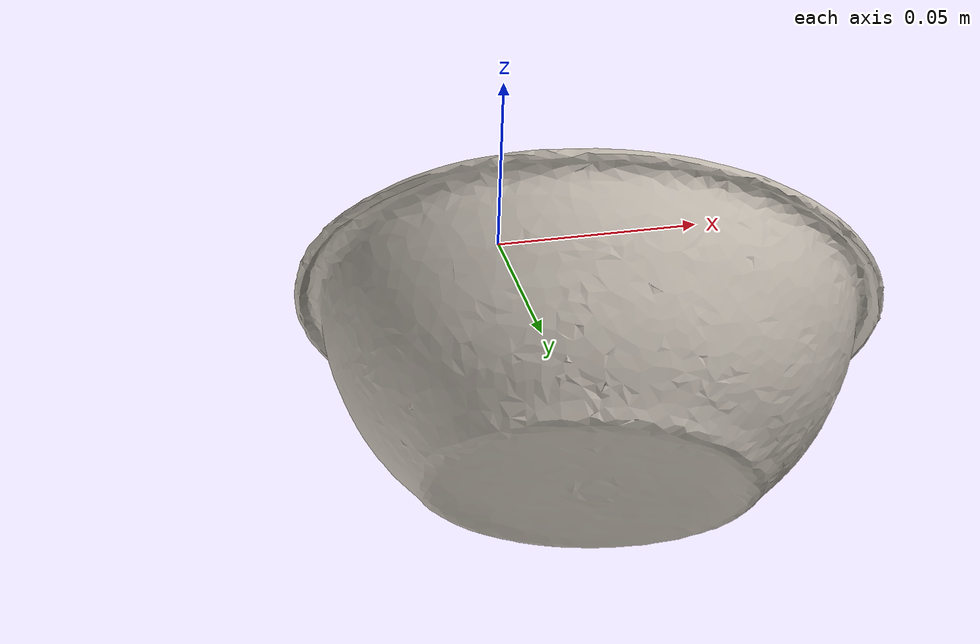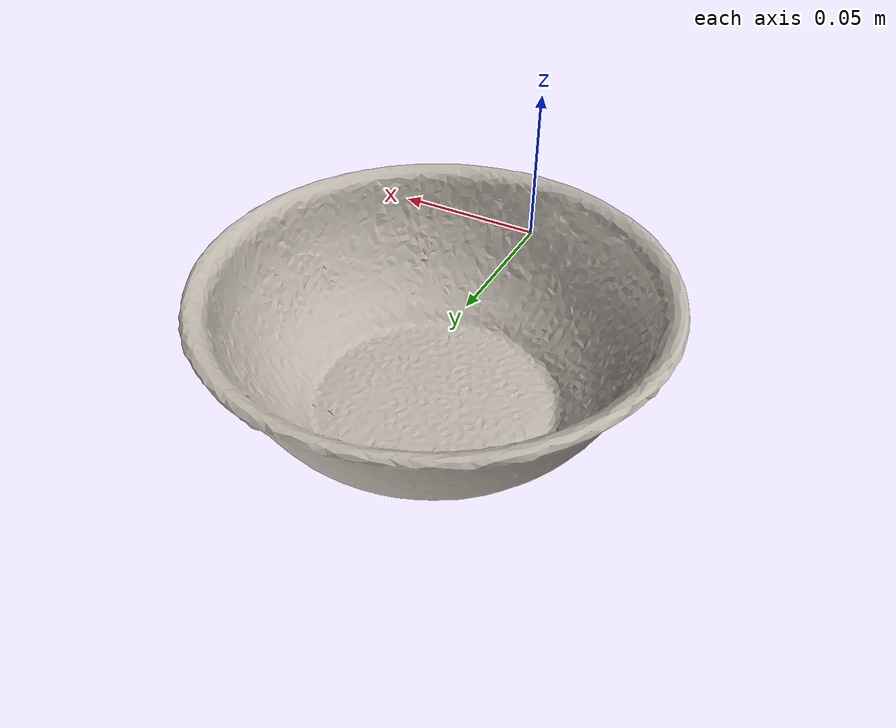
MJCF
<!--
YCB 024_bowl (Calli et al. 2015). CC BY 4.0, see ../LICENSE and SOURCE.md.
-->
<mujoco model="ycb_024_bowl">
  <compiler angle="radian" meshdir="." texturedir="."/>
  <asset>
    <texture name="bowl" type="2d" file="texture_map.png"/>
    <material name="bowl" texture="bowl"/>
    <mesh name="bowl" file="textured.obj"/>
  </asset>
  <worldbody>
    <body name="bowl">
      <freejoint name="bowl_free"/>
      <geom name="bowl_visual" type="mesh" mesh="bowl" material="bowl" pos="0.0148 0.0437 -0.0270"
            contype="0" conaffinity="0" group="2" mass="0"/>
      <geom name="bowl_collision" type="mesh" mesh="bowl" pos="0.0148 0.0437 -0.0270" mass="0.147"
            group="3" condim="4" friction="0.9 0.005 0.0001"/>
    </body>
  </worldbody>
</mujoco>
